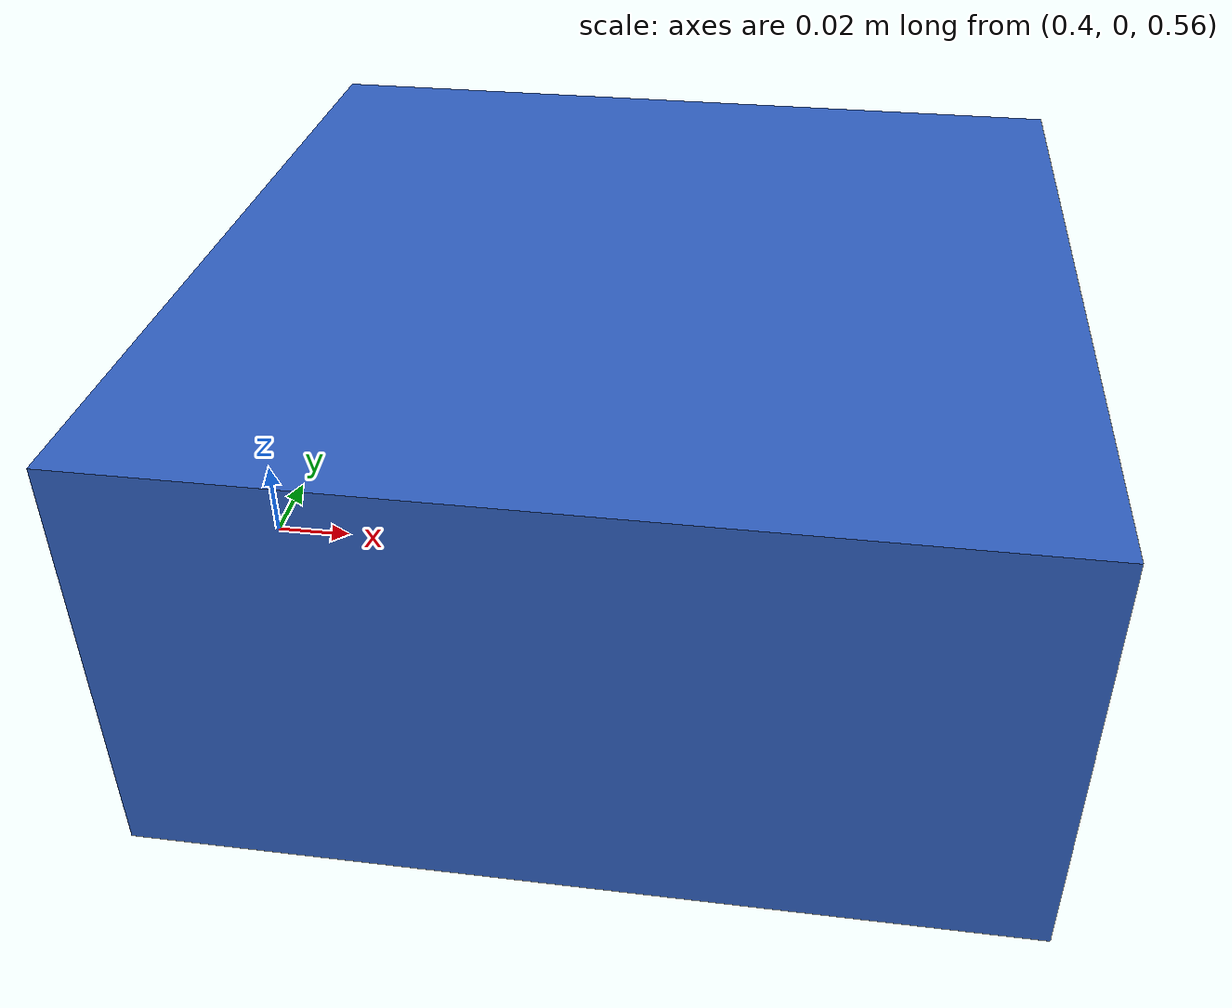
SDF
<?xml version="1.0" ?>
<sdf version="1.7">
  <world name="empty">

    <!-- Provide ROS init & clock inside gz sim -->

    <!-- Simple sun light (no Fuel) -->
    <light name="sun" type="directional">
      <cast_shadows>true</cast_shadows>
      <direction>-0.5 0.5 -1.0</direction>
      <diffuse>1 1 1 1</diffuse>
      <specular>0.1 0.1 0.1 1</specular>
    </light>

    <!-- Ground plane made from a primitive (no Fuel) -->
    <model name="ground_plane">
      <static>true</static>
      <link name="link">
        <collision name="collision">
          <geometry>
            <plane>
              <normal>0 0 1</normal>
              <size>100 100</size>
            </plane>
          </geometry>
        </collision>
        <visual name="visual">
          <geometry>
            <plane>
              <normal>0 0 1</normal>
              <size>100 100</size>
            </plane>
          </geometry>
          <material>
            <ambient>0.6 0.6 0.6 1</ambient>
            <diffuse>0.6 0.6 0.6 1</diffuse>
          </material>
        </visual>
      </link>
    </model>

  <include>
    <uri>model://workpiece_box</uri>
  </include>

  </world>
</sdf>

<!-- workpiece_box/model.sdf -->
<sdf version="1.7">
  <model name="workpiece_box">
    <static>false</static>
    <pose>0.5 0 0.6 0 0 0</pose> <!-- start a bit above ground -->
    <link name="link">
      <inertial>
        <mass>1.0</mass>
        <inertia>
          <ixx>0.0041667</ixx>
          <iyy>0.0041667</iyy>
          <izz>0.0066667</izz>
          <ixy>0</ixy><ixz>0</ixz><iyz>0</iyz>
        </inertia>
      </inertial>

      <collision name="collision">
        <geometry>
          <box><size>0.20 0.20 0.10</size></box>
        </geometry>
        <surface>
          <friction>
            <ode>
              <mu>1.0</mu>     <!-- friction in first direction -->
              <mu2>1.0</mu2>   <!-- friction in second direction -->
            </ode>
          </friction>
          <contact>
            <ode>
              <kp>1e5</kp>   <!-- contact stiffness -->
              <kd>1.0</kd>   <!-- damping -->
            </ode>
          </contact>
        </surface>
      </collision>

      <visual name="visual">
        <geometry>
          <box><size>0.20 0.20 0.10</size></box>
        </geometry>
        <material>
          <ambient>0.2 0.4 0.8 1</ambient>
          <diffuse>0.2 0.4 0.8 1</diffuse>
        </material>
      </visual>
    </link>
  </model>
</sdf>
